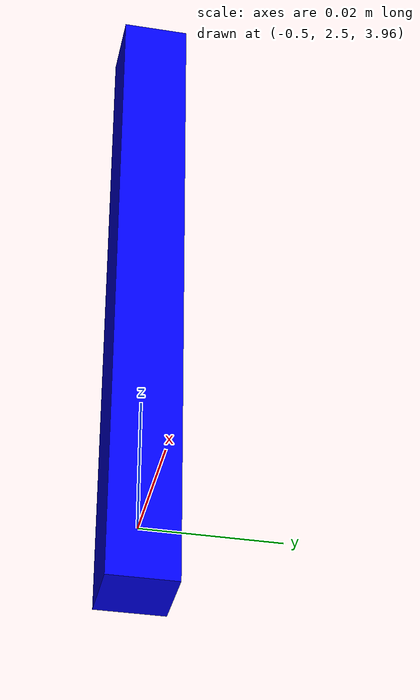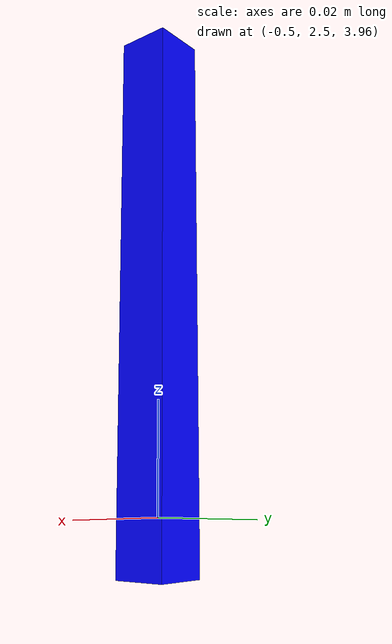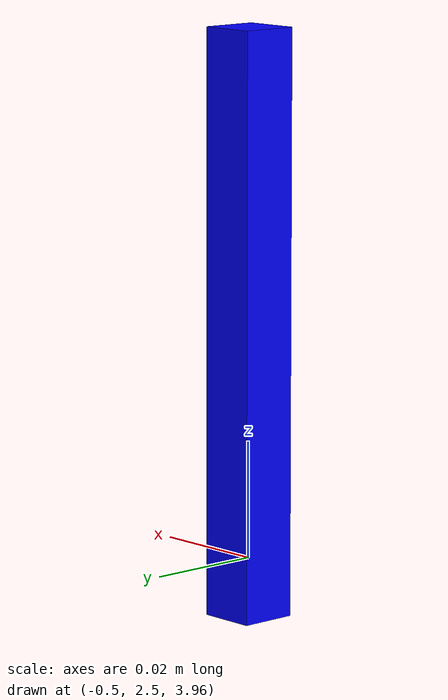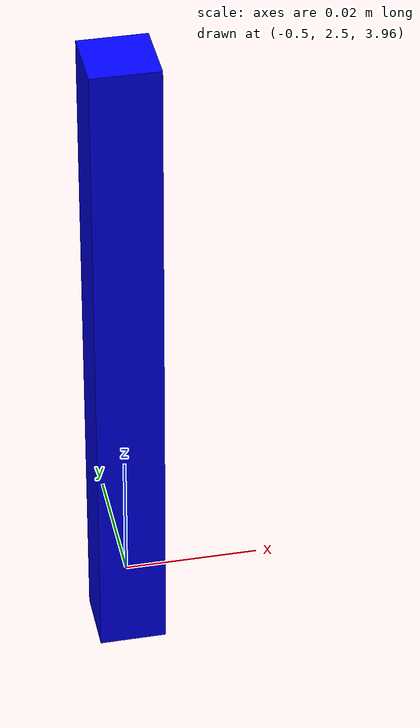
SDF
<?xml version="1.0"?>
<sdf version="1.6">
  <model name="camera2">
    <static>true</static>
    <pose>-0.5 2.5 4 0 1.57079632679 0</pose>
    <link name="camera2_link">
      <inertial>
        <mass>0.1</mass>
        <inertia>
          <ixx>1e-6</ixx>
          <ixy>0</ixy>
          <ixz>0</ixz>
          <iyy>1e-6</iyy>
          <iyz>0</iyz>
          <izz>1e-6</izz>
        </inertia>
      </inertial>
      <visual name="camera_visual">
        <geometry>
          <box>
            <size>0.1 0.01 0.01</size>
          </box>
        </geometry>
        <material>
          <ambient>0 0 1 1</ambient>
          <diffuse>0 0 1 1</diffuse>
        </material>
      </visual>
      <collision name="camera_collision">
        <geometry>
          <box>
            <size>0.1 0.1 0.1</size>
          </box>
        </geometry>
      </collision>
      <sensor name="camera2" type="camera">
        <camera>
          <horizontal_fov>1.047</horizontal_fov>
          <image>
            <width>640</width>
            <height>480</height>
            <format>R8G8B8</format>
          </image>
          <clip>
            <near>0.1</near>
            <far>100</far>
          </clip>
        </camera>
        <plugin name="camera_controller" filename="libgazebo_ros_camera.so">
          <alwaysOn>true</alwaysOn>
          <updateRate>0.0</updateRate>
          <cameraName>camera2</cameraName>
          <imageTopicName>image_raw</imageTopicName>
          <cameraInfoTopicName>camera_info</cameraInfoTopicName>
          <frameName>camera2_link</frameName>
          <hackBaseline>0.07</hackBaseline>
          <distortionK1>0.0</distortionK1>
          <distortionK2>0.0</distortionK2>
          <distortionK3>0.0</distortionK3>
          <distortionT1>0.0</distortionT1>
          <distortionT2>0.0</distortionT2>
        </plugin>
      </sensor>
    </link>
  </model>
</sdf>
